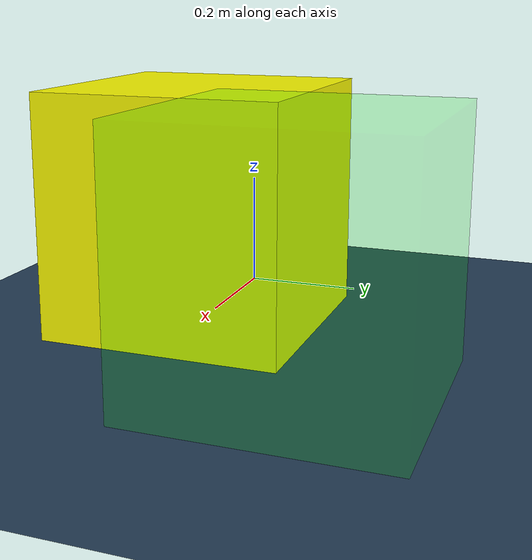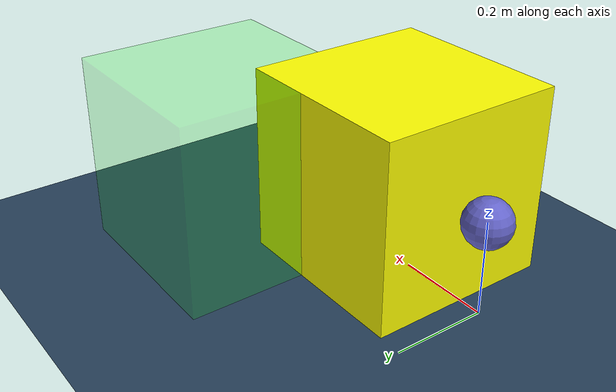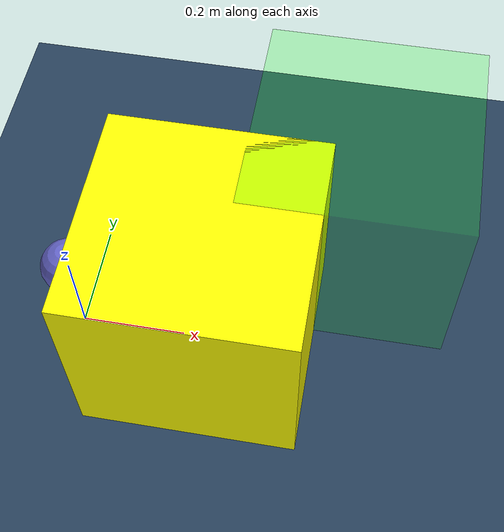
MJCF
<mujoco model="ball_rigid_body">
    <option integrator="RK4" timestep="0.01"/>

    <!-- Default parameters for geoms -->
    <default>
        <geom solref="0.02 1" solimp="0.9 0.95 0.001"/>
    </default>

    <asset>
        <texture builtin="gradient" height="3072" rgb1="0.3 0.5 0.7" rgb2="0 0 0" type="skybox" width="512"/>
        <texture builtin="checker" height="300" mark="edge" markrgb="0.8 0.8 0.8" name="groundplane" rgb1="0.2 0.3 0.4" rgb2="0.1 0.2 0.3" type="2d" width="300"/>
        <material name="groundplane" reflectance="0.2" texrepeat="5 5" texture="groundplane" texuniform="true"/>
    </asset>

    <!-- World body -->
    <worldbody>
        <light dir="0 0 -1" directional="true" pos="0 0 1.5"/>
        <!-- Ground plane -->
        <geom condim="4" friction="0.0 0.005 0.001" material="groundplane" name="floor" priority="2" size="0 0 0.05" type="plane"/>

        <!-- Rigid body -->
        <body name="rigid_body" pos="0.25 0 0.2">
            <freejoint/>
            <geom type="box" size="0.2 0.2 0.2" rgba="1 1 0 1" mass=".1" condim="6"/>
        </body>

        <!-- Ball robot -->
        <body name="ball" pos="0.0 0 0.2">
            <geom type="sphere" size="0.05" rgba="0.4 0.4 0.8 1" condim="4" mass="5." friction=".5 0.005 0.001"/>
            <joint name="joint_x" type="slide" pos="0 0 0" axis="1 0 0"/>
            <joint name="joint_y" type="slide" pos="0 0 0" axis="0 1 0"/>
        </body>

        <site name="target" type="box" pos="0.5 0.25 0.2" size="0.2 0.2 0.2" rgba="0 1 0. 0.2"/>
s    </worldbody>

    <!-- Weld constraint to attach ball to rigid body -->

    <actuator>
        <motor name="actuator_x" joint="joint_x" gear="1" ctrlrange="-5 5"/>
        <motor name="actuator_y" joint="joint_y" gear="1" ctrlrange="-5 5"/>
    </actuator>

</mujoco>
